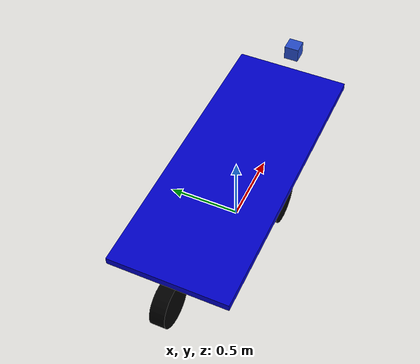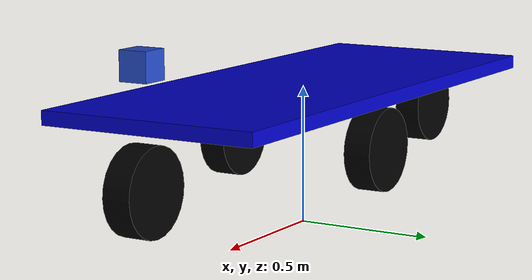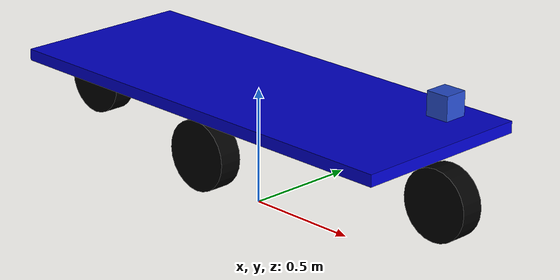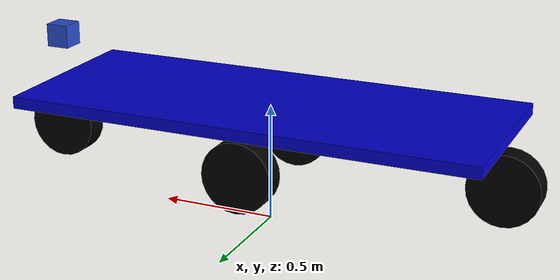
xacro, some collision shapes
<?xml version="1.0"?>
<robot name="R2D2" xmlns:xacro="http://ros.org/wiki/xacro">
<material name="blue">
  <color rgba="0 0 0.8 1"/>
</material>

<material name="black">
  <color rgba="0 0 0 1"/>
</material>

<material name="white">
  <color rgba="1 1 1 1"/>
</material>

  <xacro:macro name="default_inertial" params="mass">
    <inertial>
      <mass value="${mass}" />
      <inertia ixx="1.0" ixy="0.0" ixz="0.0" iyy="1.0" iyz="0.0" izz="1.0" />
    </inertial>
  </xacro:macro>

<link name="base_footprint">
</link>

<link name="base_link">
    <visual>
      <geometry>
         <box size="2 0.8 0.05"/>
      </geometry>
     <material name="blue"/>
    </visual>
    <collision>
      <geometry>
        <box size="1 0.8 0.05"/>
      </geometry>
    </collision>
    <xacro:default_inertial mass="50"/>
  </link>

  <link name="left_front_wheel">
    <visual>
      <geometry>
        <cylinder length="0.1" radius="0.15"/>
      </geometry>
      <origin xyz="0 0 0" rpy="1.57 0 0"/>
      <material name="black"/>
    </visual>
    <collision>
      <geometry>
        <cylinder length="0.1" radius="0.15"/>
      </geometry>
      <origin xyz="0 0 0" rpy="1.57 0 0"/>
    </collision>
    <xacro:default_inertial mass="1"/>
  </link>

<link name="right_front_wheel">
    <visual>
      <geometry>
        <cylinder length="0.1" radius="0.15"/>
      </geometry>
      <origin xyz="0 0 0" rpy="1.57 0 0"/>
      <material name="black"/>
    </visual>
    <collision>
      <geometry>
        <cylinder length="0.1" radius="0.15"/>
      </geometry>
      <origin xyz="0 0 0" rpy="1.57 0 0"/>
    </collision>
    <xacro:default_inertial mass="1"/>
  </link>

<link name="front_wheel">
    <visual>
      <geometry>
        <cylinder length="0.1" radius="0.15"/>
      </geometry>
      <origin xyz="0 0 0" rpy="1.57 0 0"/>
      <material name="black"/>
    </visual>
    <collision>
      <geometry>
        <cylinder length="0.1" radius="0.15"/>
      </geometry>
      <origin xyz="0 0 0" rpy="1.57 0 0"/>
    </collision>
    <xacro:default_inertial mass="0.01"/>
  </link>

<link name="rear_wheel">
    <visual>
      <geometry>
        <cylinder length="0.1" radius="0.15"/>
      </geometry>
      <origin xyz="0 0 0" rpy="1.57 0 0"/>
      <material name="black"/>
    </visual>
    <collision>
      <geometry>
        <cylinder length="0.1" radius="0.15"/>
      </geometry>
      <origin xyz="0 0 0" rpy="1.57 0 0"/>
    </collision>
    <xacro:default_inertial mass="0.01"/>
  </link>

  <!-- published int launch file -->
  <!-- if published in here the tf time will too fast than other link ,it will display error in rviz-->
  <joint name="base_footprint_to_base_link" type="fixed">
    <parent link="base_footprint"/>
    <child link="base_link"/>
    <origin xyz="0 0 0.5" rpy="0 0 0"/>
    <axis xyz="0 1 0"/>
  </joint>

  <joint name="left_front_wheel_joint" type="continuous">
    <parent link="base_link"/>
    <child link="left_front_wheel"/>
    <origin xyz="-0.0 0.3 -0.2" rpy="0 0 0"/>
    <axis xyz="0 1 0"/>
  </joint>

  <joint name="right_front_wheel_joint" type="continuous">
    <parent link="base_link"/>
    <child link="right_front_wheel"/>
    <origin xyz="-0.0 -0.3 -0.2" rpy="0 0 0" />
    <axis xyz="0 1 0"/>
  </joint>

  <joint name="front_wheel_joint" type="continuous">
    <parent link="base_link"/>
    <child link="front_wheel"/>
    <origin xyz="1 0 -0.2" rpy="0 0 0" />
    <axis xyz="0 1 0"/>
  </joint>

  <joint name="rear_wheel_joint" type="continuous">
    <parent link="base_link"/>
    <child link="rear_wheel"/>
    <origin xyz="-1 0 -0.2" rpy="0 0 0" />
    <axis xyz="0 1 0"/>
  </joint>

  <xacro:include filename="$(find dhc_houdar_pkg)/urdf/hokuyolaser.xacro" />
  <xacro:hokuyolaser parent_link="base_link">
    <origin xyz="1.0 0 0.2" rpy="0 0 0" />
  </xacro:hokuyolaser>

<transmission name="left_front_wheel_trans">
  <type>transmission_interface/SimpleTransmission</type>
  <actuator name="$left_front_wheel_motor">
    <mechanicalReduction>1</mechanicalReduction>
  </actuator>
  <joint name="left_front_wheel_joint">
   <hardwareInterface>VelocityJointInterface</hardwareInterface>
  </joint>
</transmission>

<transmission name="right_front_wheel_trans">
  <type>transmission_interface/SimpleTransmission</type>
  <actuator name="$right_front_wheel_motor">
    <mechanicalReduction>1</mechanicalReduction>
  </actuator>
  <joint name="right_front_wheel_joint">
   <hardwareInterface>VelocityJointInterface</hardwareInterface>
  </joint>
</transmission>

<transmission name="front_wheel_trans">
  <type>transmission_interface/SimpleTransmission</type>
  <actuator name="$front_wheel_motor">
    <mechanicalReduction>1</mechanicalReduction>
  </actuator>
  <joint name="front_wheel_joint">
   <hardwareInterface>VelocityJointInterface</hardwareInterface>
  </joint>
</transmission>

<transmission name="rear_wheel_trans">
  <type>transmission_interface/SimpleTransmission</type>
  <actuator name="$rear_wheel_motor">
    <mechanicalReduction>1</mechanicalReduction>
  </actuator>
  <joint name="rear_wheel_joint">
   <hardwareInterface>VelocityJointInterface</hardwareInterface>
  </joint>
</transmission>

 <gazebo>
  <plugin name="gazebo_ros_control" filename="libgazebo_ros_control.so">
  <robotNamespace>/</robotNamespace>
  </plugin>
</gazebo>

</robot>

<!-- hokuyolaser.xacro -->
<robot xmlns:xacro="http://www.ros.org/wiki/xacro" name="hokuyolaser">

  <xacro:property name="laser_x" value="0.1" />
  <xacro:property name="laser_y" value="0.1" />
  <xacro:property name="laser_z" value="0.1" />

  <xacro:macro name="hokuyolaser" params="parent_link *joint_origin" >
    <!-- Hokuyo Laser -->
    <link name="hokuyo_link">

      <collision>
        <origin xyz="0 0 0" rpy="0 0 0"/>
        <geometry>
          <box size="${laser_x} ${laser_y} ${laser_z}"/>
        </geometry>
      </collision>

      <visual>
        <origin xyz="0 0 0" rpy="0 0 0"/>
        <geometry>
          <mesh filename="package://rrbot_description/meshes/hokuyo.dae"/>
        </geometry>
      </visual>

      <inertial>
        <mass value="1e-5" />
        <origin xyz="0 0 0" rpy="0 0 0"/>
        <inertia ixx="1e-6" ixy="0" ixz="0" iyy="1e-6" iyz="0" izz="1e-6" />
      </inertial>
    </link>

  <!-- hokuyo -->
    <gazebo reference="hokuyo_link">
      <material>Gazebo/blue</material>
      <sensor type="gpu_ray" name="head_hokuyo_sensor">
        <pose>0 0 0 0 0 0</pose>
        <!--visualize the scan  ray line chq -->
        <visualize>true</visualize>
        <update_rate>30</update_rate>
        <ray>
          <scan>
            <horizontal>
              <samples>720</samples>
              <resolution>0.25</resolution>
              <min_angle>-1.570796</min_angle>
              <max_angle>1.570796</max_angle>
            </horizontal>
          </scan>
          <range>
            <min>0.010</min>
            <max>20.0</max>
            <resolution>0.01</resolution>
          </range>
          <noise>
            <type>gaussian</type>
            <mean>0.0</mean>
            <stddev>0.01</stddev>
          </noise>
        </ray>
        <plugin name="gazebo_ros_head_hokuyo_controller" filename="libgazebo_ros_gpu_laser.so">
          <!-- specify the publishing scan topic name  -->
          <topicName>scan</topicName>
          <frameName>hokuyo_link</frameName>
        </plugin>
      </sensor>
    </gazebo>

    <joint name="lase_joint" type="fixed">
      <parent link="${parent_link}" />
      <child link="hokuyo_link" />
      <axis xyz="0 1 0" />
      <!-- origin cord spcified  outsidely -->
      <xacro:insert_block name="joint_origin"/>
    </joint>

  </xacro:macro>

</robot>
